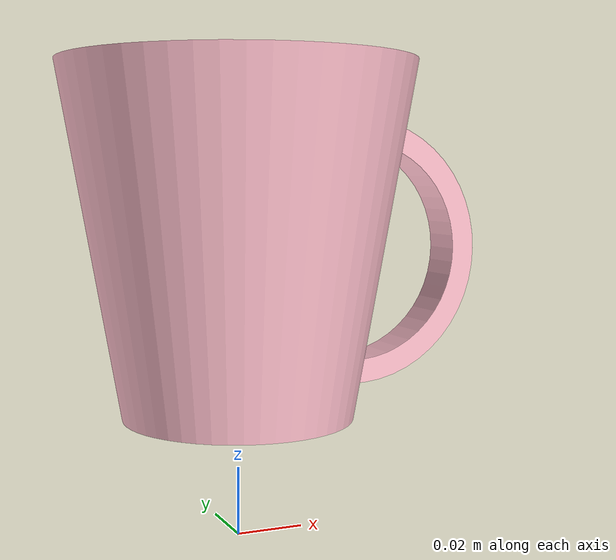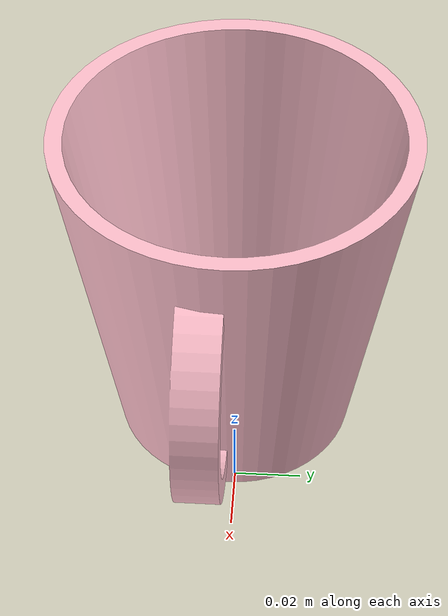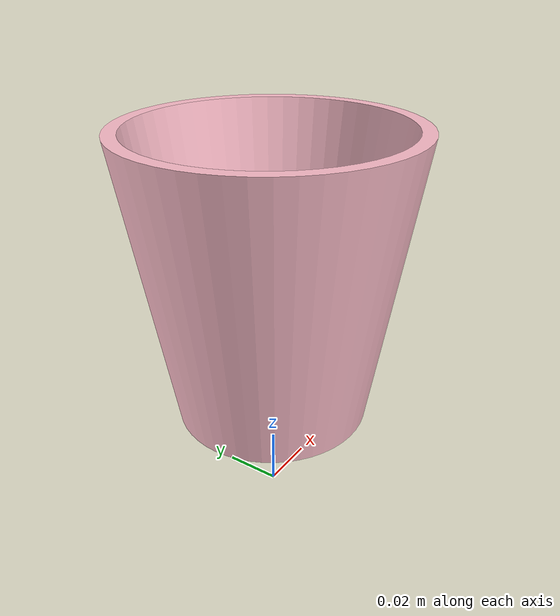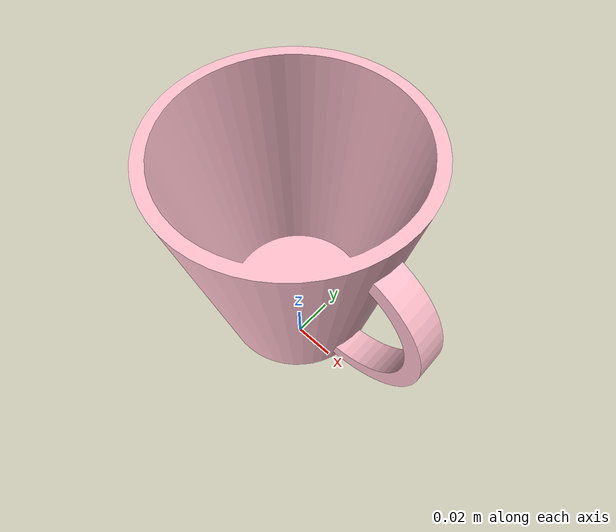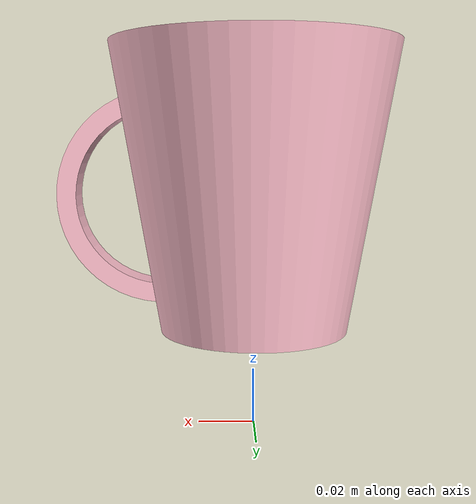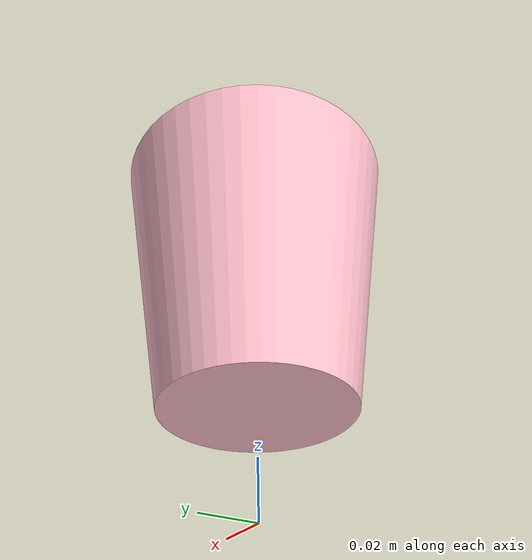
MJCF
<mujoco model="cup">
    <include file='../common.xml'/>

    <asset>
        <mesh name="cup" file="../meshes/objects/cup/cup.stl"  />
        <mesh name="contact0" file="../meshes/objects/cup/contact0.stl"  />
        <mesh name="contact1" file="../meshes/objects/cup/contact1.stl"  />
        <mesh name="contact2" file="../meshes/objects/cup/contact2.stl"  />
        <mesh name="contact3" file="../meshes/objects/cup/contact3.stl"  />
        <mesh name="contact4" file="../meshes/objects/cup/contact4.stl"  />
        <mesh name="contact5" file="../meshes/objects/cup/contact5.stl"  />
        <mesh name="contact6" file="../meshes/objects/cup/contact6.stl"  />
        <mesh name="contact7" file="../meshes/objects/cup/contact7.stl"  />
        <mesh name="contact8" file="../meshes/objects/cup/contact8.stl"  />
        <mesh name="contact9" file="../meshes/objects/cup/contact9.stl"  />
        <mesh name="contact10" file="../meshes/objects/cup/contact10.stl"  />
        <mesh name="contact11" file="../meshes/objects/cup/contact11.stl"  />
    </asset>

    <worldbody>
        <body name="object" pos="0.00 0.0 0.035" >
            <joint name="OBJTx" pos="0 0 0" axis="1 0 0" type="slide" class="freejoint" />
            <joint name="OBJTy" pos="0 0 0" axis="0 1 0" type="slide" class="freejoint" />
            <joint name="OBJTz" pos="0 0 0" axis="0 0 1" type="slide" class="freejoint" />
            <joint name="OBJRx" pos="0 0 0" axis="1 0 0" class="freejoint" />
            <joint name="OBJRy" pos="0 0 0" axis="0 1 0" class="freejoint" />
            <joint name="OBJRz" pos="0 0 0" axis="0 0 1" class="freejoint" />
            <geom solref=".0005 1" name="cup_visual" class="object_visual" mesh="cup" rgba="1 0.75 0.8 1.0" />
            <geom solref=".0005 1" name="cup_contact0" class="object_contact" mesh="contact0"  />
            <geom solref=".0005 1" name="cup_contact1" class="object_contact" mesh="contact1"  />
            <geom solref=".0005 1" name="cup_contact2" class="object_contact" mesh="contact2"  />
            <geom solref=".0005 1" name="cup_contact3" class="object_contact" mesh="contact3"  />
            <geom solref=".0005 1" name="cup_contact4" class="object_contact" mesh="contact4"  />
            <geom solref=".0005 1" name="cup_contact5" class="object_contact" mesh="contact5"  />
            <geom solref=".0005 1" name="cup_contact6" class="object_contact" mesh="contact6"  />
            <geom solref=".0005 1" name="cup_contact7" class="object_contact" mesh="contact7"  />
            <geom solref=".0005 1" name="cup_contact8" class="object_contact" mesh="contact8"  />
            <geom solref=".0005 1" name="cup_contact9" class="object_contact" mesh="contact9"  />
            <geom solref=".0005 1" name="cup_contact10" class="object_contact" mesh="contact10"  />
            <geom solref=".0005 1" name="cup_contact11" class="object_contact" mesh="contact11"  />
        </body>
    </worldbody>
</mujoco>

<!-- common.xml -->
<mujoco>
    <compiler angle="radian" />

    <asset>
        <material name="MatObject" specular="0.75" shininess="0.1" reflectance="0.5" rgba="0.9 0.7 0.5 1" />
    </asset>

    <default>

        <joint limited="true" margin="0.01" armature="0.001" damping="0.05" frictionloss="0.001" />
        <geom friction="1 0.5 0.01" margin="0.0005" density="1250" />
        <site size="0.005 0 0" rgba="0.4 0.9 0.4 1" />
        <general ctrllimited="true" ctrlrange="-1 1" />
        <tendon limited="true" />

        <default class="object_visual">
            <geom type="mesh" contype="0" conaffinity="0" mass="0" group="1" material="MatObject" />
        </default>

        <default class="object_contact">
            <geom type="mesh" density="1250" condim="4" rgba="0 1 0 0" />
        </default>

        <default class="freejoint">
            <joint limited="false" damping="0"/>
        </default>
    </default>

    <visual>
        <!-- free camera attributes -->
        <global fovy="25" />
    </visual>
</mujoco>
